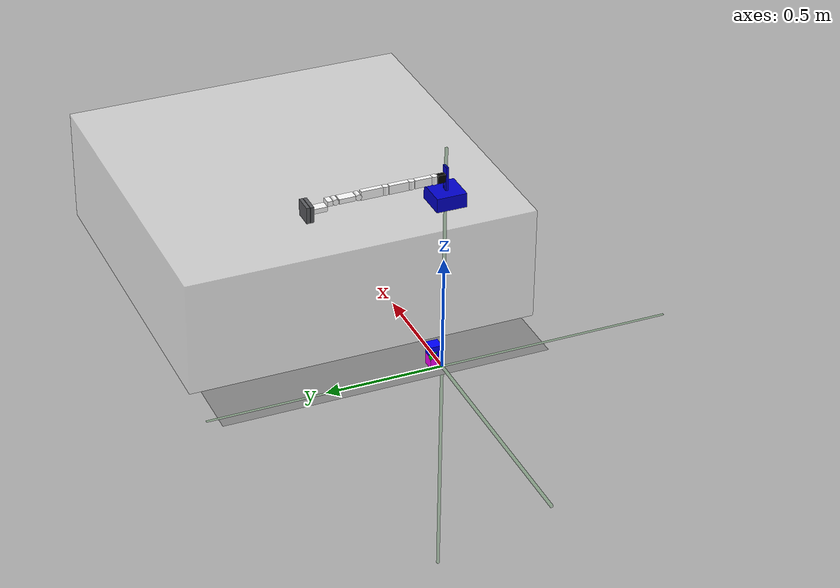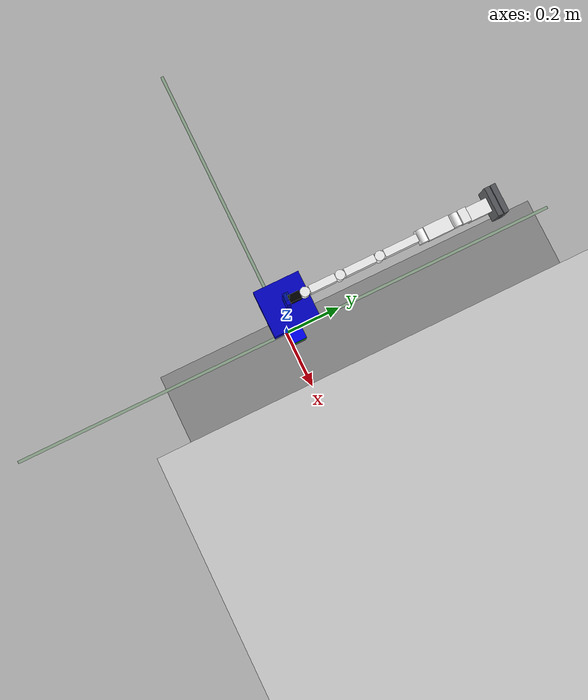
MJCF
<?xml version="1.0" encoding="utf-8"?>
<mujoco>
	<compiler angle="radian" coordinate="local" meshdir="../stls/fetch" texturedir="../textures" discardvisual="false" inertiafromgeom="true" balanceinertia="true"></compiler>
	<option timestep="0.002">
		<flag warmstart="enable"></flag>
	</option>

	<include file="shared.xml"></include>

	<worldbody>
		<geom name="floor0" pos="0.8 0.25 0" size="0.85 0.7 1" type="plane" condim="3" material="floor_mat"></geom>
		<body name="floor0" pos="0.8 0.25 0">
			<site name="target0" pos="0 0 0" size="0.02 0.02 0.02" rgba="1 0 1 0.2" type="ellipsoid"></site>
			<site name="target1" pos="0 0 0" size="0.02 0.02 0.02" rgba="0 1 0 0.2" type="ellipsoid"></site>
			<site name="target2" pos="0 0 0" size="0.02 0.02 0.02" rgba="0 0 1 0.2" type="ellipsoid"></site>
			<site name="target3" pos="0 0 0" size="0.02 0.02 0.02" rgba="1 1 0 0.2" type="ellipsoid"></site>
			<site name="target4" pos="0 0 0" size="0.02 0.02 0.02" rgba="0 1 1 0.2" type="ellipsoid"></site>
			<site name="final_arm_target" pos="0 0 0" size="0.02 0.02 0.02" rgba="0 0 0 0.5" type="ellipsoid"></site>
			<site name="goal0" pos="0 0 0" size="0.02 0.02 0.02" rgba="1 0 0 0.1" type="ellipsoid"></site>
			<site name="goal1" pos="0 0 0" size="0.02 0.02 0.02" rgba="0 1 0 0.1" type="ellipsoid"></site>
			<site name="goal2" pos="0 0 0" size="0.02 0.02 0.02" rgba="0 0 1 0.1" type="ellipsoid"></site>
			<site name="goal3" pos="0 0 0" size="0.02 0.02 0.02" rgba="1 1 0 0.1" type="ellipsoid"></site>
			<site name="goal4" pos="0 0 0" size="0.02 0.02 0.02" rgba="0 1 1 0.1" type="ellipsoid"></site>
			<site name="final_arm_goal" pos="0 0 0" size="0.02 0.02 0.02" rgba="0 0 0 0.1" type="ellipsoid"></site>
		</body>

		<include file="robot.xml"></include>

		<body pos="0.95 0.25 0.25" name="table0">
			<geom size="0.75 0.75 0.25" type="box" mass="2000" material="table_mat" rgba="1 1 1 0.5"></geom>
		</body>

		<body name="object0" pos="0.025 0.025 0.025">
			<joint name="object0:joint" type="free" damping="0.01"></joint>
			<geom size="0.025 0.025 0.025" type="box" condim="3" name="object0" material="block_mat" rgba="1 0 1 1" mass="2"></geom>
			<site name="object0" pos="0 0 0" size="0.02 0.02 0.02" rgba="1 0 0 1" type="sphere"></site>
		</body>
		<body name="object1" pos="0.025 0.025 0.05">
			<joint name="object1:joint" type="free" damping="0.01"></joint>
			<geom size="0.025 0.025 0.025" type="box" condim="3" name="object1" material="block_mat" rgba="0 1 0 1" mass="2"></geom>
			<site name="object1" pos="0 0 0" size="0.02 0.02 0.02" rgba="1 0 0 1" type="sphere"></site>
		</body>
		<body name="object2" pos="0.025 0.025 0.075">
			<joint name="object2:joint" type="free" damping="0.01"></joint>
			<geom size="0.025 0.025 0.025" type="box" condim="3" name="object2" material="block_mat" rgba="0 0 1 1" mass="2"></geom>
			<site name="object2" pos="0 0 0" size="0.02 0.02 0.02" rgba="1 0 0 1" type="sphere"></site>
		</body>
		<body name="object3" pos="0.025 0.025 0.075">
			<joint name="object3:joint" type="free" damping="0.01"></joint>
			<geom size="0.025 0.025 0.025" type="box" condim="3" name="object3" material="block_mat" rgba="1 1 0 1" mass="2"></geom>
			<site name="object3" pos="0 0 0" size="0.02 0.02 0.02" rgba="1 0 0 1" type="sphere"></site>
		</body>
		<body name="object4" pos="0.025 0.025 0.075">
			<joint name="object4:joint" type="free" damping="0.01"></joint>
			<geom size="0.025 0.025 0.025" type="box" condim="3" name="object4" material="block_mat" rgba="0 1 1 1" mass="2"></geom>
			<site name="object4" pos="0 0 0" size="0.02 0.02 0.02" rgba="1 0 0 1" type="sphere"></site>
		</body>

		<light directional="true" ambient="0.2 0.2 0.2" diffuse="0.8 0.8 0.8" specular="0.3 0.3 0.3" castshadow="false" pos="0 0 4" dir="0 0 -1" name="light0"></light>
	</worldbody>
	<actuator>
		<position ctrllimited="true" ctrlrange="0 0.2" joint="robot0:l_gripper_finger_joint" kp="30000" name="robot0:l_gripper_finger_joint" user="1"></position>
		<position ctrllimited="true" ctrlrange="0 0.2" joint="robot0:r_gripper_finger_joint" kp="30000" name="robot0:r_gripper_finger_joint" user="1"></position>
	</actuator>

</mujoco>

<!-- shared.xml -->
<mujoco>
    <asset>
        <texture type="skybox" builtin="gradient" rgb1="0.44 0.85 0.56" rgb2="0.46 0.87 0.58" width="32" height="32"></texture>
        <texture name="texture_block" file="block.png" gridsize="3 4" gridlayout=".U..LFRB.D.."></texture>

        <material name="floor_mat" specular="0" shininess="0.5" reflectance="0" rgba="0.2 0.2 0.2 1"></material>
        <material name="table_mat" specular="0" shininess="0.5" reflectance="0" rgba="0.93 0.93 0.93 1"></material>
        <material name="block_mat" specular="0" shininess="0.5" reflectance="0" rgba="0.2 0.2 0.2 1"></material>
        <material name="puck_mat" specular="0" shininess="0.5" reflectance="0" rgba="0.2 0.2 0.2 1"></material>
        <material name="robot0:geomMat" shininess="0.03" specular="0.4"></material>
        <material name="robot0:gripper_finger_mat" shininess="0.03" specular="0.4" reflectance="0"></material>
        <material name="robot0:gripper_mat" shininess="0.03" specular="0.4" reflectance="0"></material>
        <material name="robot0:arm_mat" shininess="0.03" specular="0.4" reflectance="0"></material>
        <material name="robot0:head_mat" shininess="0.03" specular="0.4" reflectance="0"></material>
        <material name="robot0:torso_mat" shininess="0.03" specular="0.4" reflectance="0"></material>
        <material name="robot0:base_mat" shininess="0.03" specular="0.4" reflectance="0"></material>

    </asset>

    <equality>
        <weld body1="robot0:mocap" body2="robot0:gripper_link" solimp="0.9 0.95 0.001" solref="0.02 1"></weld>
    </equality>

    <contact>
        <exclude body1="robot0:r_gripper_finger_link" body2="robot0:l_gripper_finger_link"></exclude>
        <exclude body1="torso_lift_link" body2="torso_fixed_link"></exclude>
        <exclude body1="torso_lift_link" body2="shoulder_pan_link"></exclude>
    </contact>

    <default>
        <default class="robot0:fetch">
            <geom margin="0.001" material="robot0:geomMat" rgba="1 1 1 1" solimp="0.99 0.99 0.01" solref="0.01 1" type="mesh" user="0"></geom>
            <joint armature="1" damping="50" frictionloss="0" stiffness="0"></joint>

            <default class="robot0:fetchGripper">
                <geom condim="4" margin="0.001" type="box" user="0" rgba="0.356 0.361 0.376 1.0"></geom>
                <joint armature="100" damping="1000" limited="true" solimplimit="0.99 0.999 0.01" solreflimit="0.01 1" type="slide"></joint>
            </default>

            <default class="robot0:grey">
                <geom rgba="0.356 0.361 0.376 1.0"></geom>
            </default>
            <default class="robot0:blue">
                <geom rgba="0.086 0.506 0.767 1.0"></geom>
            </default>
        </default>
    </default>
</mujoco>

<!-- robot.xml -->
<mujoco model="robot0">
    <body mocap="true" name="robot0:mocap" pos="0 0 0">
        <geom conaffinity="0" contype="0" pos="0 0 0" rgba="0 0.5 0 0.7" size="0.005 0.005 0.005" type="box"></geom>
        <geom conaffinity="0" contype="0" pos="0 0 0" rgba="0 0.5 0 0.1" size="1 0.005 0.005" type="box"></geom>
        <geom conaffinity="0" contype="0" pos="0 0 0" rgba="0 0.5 0 0.1" size="0.005 1 0.001" type="box"></geom>
        <geom conaffinity="0" contype="0" pos="0 0 0" rgba="0 0.5 0 0.1" size="0.005 0.005 1" type="box"></geom>
    </body>
    <body childclass="robot0:fetch" name="base_link" pos="0 0 0">
        <joint armature="0.0001" axis="1 0 0" damping="1e+11" name="robot0:slide0" pos="0 0 0" type="slide"></joint>
		<joint armature="0.0001" axis="0 1 0" damping="1e+11" name="robot0:slide1" pos="0 0 0" type="slide"></joint>
		<joint armature="0.0001" axis="0 0 1" damping="1e+11" name="robot0:slide2" pos="0 0 0" type="slide"></joint>
        <inertial diaginertia="1.2869 1.2236 0.9868" mass="70.1294" pos="-0.0036 0 0.0014" quat="0.7605 -0.0133 -0.0061 0.6491"></inertial>
        <geom size="0.001 0.001 0.001" pos="0 0 0.38" type="box" contype="0" conaffinity="0" group="1" rgba="0 0 0.8 1" />
        <body name="box_set" pos="0 0 0.79">
            <inertial pos="0 0 0" mass="0" diaginertia="0 0 0" />
            <geom size="0.0625 0.0625 0.03" type="box" contype="0" conaffinity="0" group="1" rgba="0 0 0.8 1" />
            <body name="torso_fixed_link" pos="0 0 0.08">
                <inertial pos="0 0 0" mass="0" diaginertia="0 0 0" />
                <geom size="0.015 0.005 0.05" type="box" contype="0" conaffinity="0" group="1" rgba="0 0 0.8 1" />
                <body name="torso_lift_link" pos="0 0.021 0.002">
                    <inertial pos="0 0 0" mass="0" diaginertia="0 0 0" />
                    <geom size="0.01 0.016 0.0175" type="box" contype="0" conaffinity="0" group="1" rgba="0 0 0 1" />
                    <body name="shoulder_pan_link" pos="0 0.0285 0">
                        <inertial pos="0 0 0" mass="10" diaginertia="0.4 0.4 0.2" />
                        <joint name="motor1" pos="0 0 0" axis="0 0 1" limited="true" range="-2.6 2.6" />
                        <geom size="0.0125 0.0175" type="cylinder" contype="0" conaffinity="0" group="1" rgba="1 1 1 1" />
                        <body name="link_1" pos="0 0.0475 0">
                            <inertial pos="0 0 0" mass="0" diaginertia="0 0 0" />
                            <geom size="0.01 0.035 0.0175" type="box" contype="0" conaffinity="0" group="1" rgba="1 1 1 1" />
                            <body name="motor_2" pos="0 0.0475 0">
                                <inertial pos="0 0 0" mass="10" diaginertia="0.4 0.4 0.2" />
                                <joint name="motor2" pos="0 0 0" axis="0 0 1" limited="true" range="-2.6 2.6" />
                                <geom size="0.0125 0.0175" type="cylinder" contype="0" conaffinity="0" group="1" rgba="1 1 1 1" />
                                <body name="link_2" pos="0 0.0535 0">
                                    <inertial pos="0 0 0" mass="0" diaginertia="0 0 0" />
                                    <geom size="0.01 0.041 0.0185" type="box" contype="0" conaffinity="0" group="1" rgba="1 1 1 1" />
                                    <body name="motor_3" pos="0 0.0535 0">
                                        <inertial pos="0 0 0" mass="10" diaginertia="0.4 0.4 0.2" />
                                        <joint name="motor3" pos="0 0 0" axis="0 0 -1" limited="true" range="-2.6 2.6" />
                                        <geom size="0.0125 0.0175" type="cylinder" contype="0" conaffinity="0" group="1" rgba="1 1 1 1" />
                                        <body name="link_3" pos="0 0.0575 0">
                                            <inertial pos="0 0 0" mass="0" diaginertia="0 0 0" />
                                            <geom size="0.01 0.045 0.0185" type="box" contype="0" conaffinity="0" group="1" rgba="1 1 1 1" />
                                            <body name="motor_4" pos="0 0.0575 0">
                                                <inertial pos="0 0 0" mass="10" diaginertia="0.4 0.4 0.2" />
                                                <joint name="motor4" pos="0 0 0" axis="1 0 0" limited="true" range="-2.6 2.6" />
                                                <geom size="0.0125 0.0175" quat="0.707123 0 0.70709 0" type="cylinder" contype="0" conaffinity="0" group="1" rgba="1 1 1 1" />
                                                <body name="link_4" pos="0 0.0465 0">
                                                    <inertial pos="0 0 0" mass="0" diaginertia="0 0 0" />
                                                    <geom size="0.0185 0.034 0.01" type="box" contype="0" conaffinity="0" group="1" rgba="1 1 1 1" />
                                                    <body name="motor_5" pos="0 0.0465 0">
                                                        <inertial pos="0 0 0" mass="10" diaginertia="0.4 0.4 0.2" />
                                                        <joint name="motor5" pos="0 0 0" axis="-1 0 0" limited="true" range="-2.6 2.6" />
                                                        <geom size="0.0125 0.0175" quat="0.707123 0 0.70709 0" type="cylinder" contype="0" conaffinity="0" group="1" rgba="1 1 1 1" />
                                                        <body name="link_5" pos="0 0.02375 0">
                                                            <inertial pos="0 0 0" mass="0" diaginertia="0 0 0" />
                                                            <geom size="0.0185 0.01125 0.01" type="box" contype="0" conaffinity="0" group="1" rgba="1 1 1 1" />
                                                            <body name="link_6" pos="0 0.0435 -0.02">
                                                                <inertial pos="0 0 0" mass="0" diaginertia="0 0 0" />
                                                                <geom size="0.0185 0.03225 0.01" type="box" contype="0" conaffinity="0" group="1" rgba="1 1 1 1" />
                                                                <body name="robot0:gripper_link" pos="0 0.04475 0">
                                                                    <inertial pos="0 0 0" mass="10" diaginertia="0.4 0.4 0.2" />
                                                                    <!-- change axis in motor 6 to 0 0 1 -->
                                                                    <joint name="motor6" pos="0 0 0" axis="0 0 1" limited="true" range="-2.6 2.6" />
                                                                    <geom size="0.0125 0.0175" type="cylinder" contype="0" conaffinity="0" group="1" rgba="1 1 1 1" />
                                                                    <body childclass="robot0:fetchGripper" name="robot0:r_gripper_finger_link" pos="0 0.0159 0">
                                                                        <inertial diaginertia="0.1 0.1 0.1" mass="4" pos="-0.01 0 0"></inertial>
                                                                        <joint axis="0 1 0" name="robot0:r_gripper_finger_joint" range="0 0.05"></joint>
                                                                        <geom pos="0 -0.008 0" size="0.0385 0.007 0.0335" type="box" name="robot0:r_gripper_finger_link" material="robot0:gripper_finger_mat" condim="4" friction="1 0.05 0.01"></geom>
                                                                    </body>
                                                                    <body childclass="robot0:fetchGripper" name="robot0:l_gripper_finger_link" pos="0 -0.0159 0">
                                                                        <inertial diaginertia="0.1 0.1 0.1" mass="4" pos="-0.01 0 0"></inertial>
                                                                        <joint axis="0 -1 0" name="robot0:l_gripper_finger_joint" range="0 0.05"></joint>
                                                                        <geom pos="0 0.008 0" size="0.0385 0.007 0.0335" type="box" name="robot0:l_gripper_finger_link" material="robot0:gripper_finger_mat" condim="4" friction="1 0.05 0.01"></geom>
                                                                    </body>
                                                                    <site name="robot0:grip" pos="0.02 0 0" rgba="0 0 0 0" size="0.02 0.02 0.02"></site>

                                                                </body>
                                                            </body>
                                                        </body>
                                                    </body>
                                                </body>
                                            </body>
                                        </body>
                                    </body>
                                </body>
                            </body>
                        </body>
                    </body>
                </body>
            </body>
        </body>
    </body>
</mujoco>
